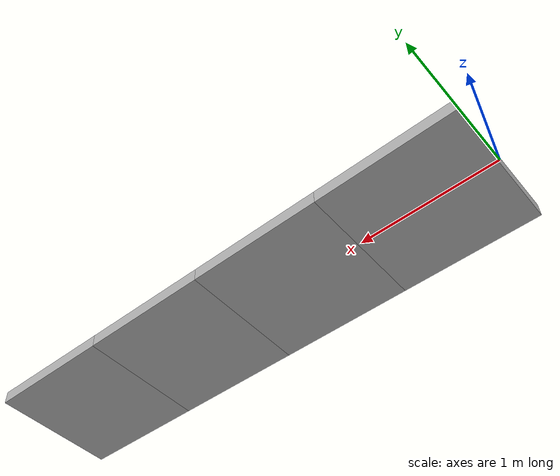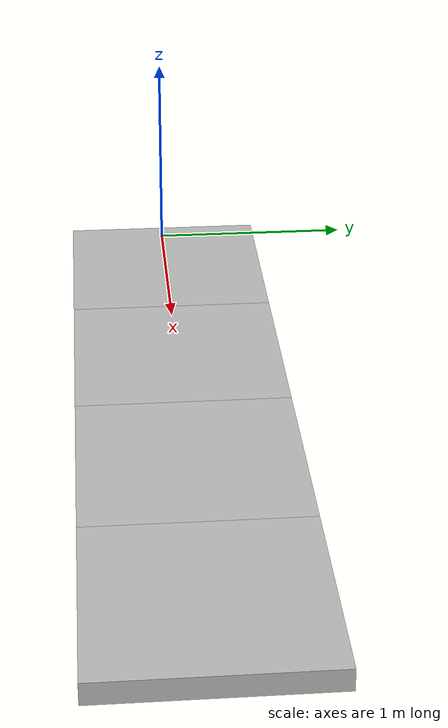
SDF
<sdf version='1.6'>
  <model name='closed_chain'>
    <link name='right_pad1'>
      <pose frame=''>0 0 0 0 -0 0</pose>
      <inertial>
        <pose frame=''>8.3e-05 9e-06 0.038196 0 -0 0</pose>
        <mass>1.41503</mass>
        <inertia>
          <ixx>0.00248548</ixx>
          <ixy>-7.4e-07</ixy>
          <ixz>3.761e-06</ixz>
          <iyy>0.00121388</iyy>
          <iyz>-4.2e-07</iyz>
          <izz>0.00287756</izz>
        </inertia>
      </inertial>
      <collision name='right_pad1_collision_collision'>
        <pose frame=''>0.5 0 0 0 -0 0</pose>
        <geometry>
          <box>
            <size>1 1 0.1</size>
          </box>
        </geometry>
      </collision>
      <visual name='right_pad1_visual_visual'>
        <pose frame=''>0.5 0 0 0 -0 0</pose>
        <geometry>
          <box>
            <size>1 1 0.1</size>
          </box>
        </geometry>
      </visual>
    </link>
    <link name='right_pad2'>
      <pose frame=''>1 0 0 0 -0 0</pose>
      <inertial>
        <pose frame=''>8.3e-05 9e-06 0.038196 0 -0 0</pose>
        <mass>1.41503</mass>
        <inertia>
          <ixx>0.00248548</ixx>
          <ixy>-7.4e-07</ixy>
          <ixz>3.761e-06</ixz>
          <iyy>0.00121388</iyy>
          <iyz>-4.2e-07</iyz>
          <izz>0.00287756</izz>
        </inertia>
      </inertial>
      <collision name='right_pad2_collision_collision'>
        <pose frame=''>0.5 0 0 0 -0 0</pose>
        <geometry>
          <box>
            <size>1 1 0.1</size>
          </box>
        </geometry>
      </collision>
      <visual name='right_pad2_visual_visual'>
        <pose frame=''>0.5 0 0 0 -0 0</pose>
        <geometry>
          <box>
            <size>1 1 0.1</size>
          </box>
        </geometry>
      </visual>
    </link>
    <joint name='right_pad_joint1' type='revolute'>
      <child>right_pad2</child>
      <parent>right_pad1</parent>
      <axis>
        <xyz>0 1 0</xyz>
        <limit>
          <lower>-3.14</lower>
          <upper>3.14</upper>
          <effort>100</effort>
          <velocity>10</velocity>
        </limit>
        <dynamics>
          <spring_reference>0</spring_reference>
          <spring_stiffness>0</spring_stiffness>
        </dynamics>
        <use_parent_model_frame>1</use_parent_model_frame>
      </axis>
    </joint>
    <link name='right_pad3'>
      <pose frame=''>2 0 0 0 -0 0</pose>
      <inertial>
        <pose frame=''>8.3e-05 9e-06 0.038196 0 -0 0</pose>
        <mass>1.41503</mass>
        <inertia>
          <ixx>0.00248548</ixx>
          <ixy>-7.4e-07</ixy>
          <ixz>3.761e-06</ixz>
          <iyy>0.00121388</iyy>
          <iyz>-4.2e-07</iyz>
          <izz>0.00287756</izz>
        </inertia>
      </inertial>
      <collision name='right_pad3_collision_collision'>
        <pose frame=''>0.5 0 0 0 -0 0</pose>
        <geometry>
          <box>
            <size>1 1 0.1</size>
          </box>
        </geometry>
      </collision>
      <visual name='right_pad3_visual_visual'>
        <pose frame=''>0.5 0 0 0 -0 0</pose>
        <geometry>
          <box>
            <size>1 1 0.1</size>
          </box>
        </geometry>
      </visual>
    </link>
    <joint name='right_pad_joint2' type='revolute'>
      <child>right_pad3</child>
      <parent>right_pad2</parent>
      <axis>
        <xyz>0 1 0</xyz>
        <limit>
          <lower>-3.14</lower>
          <upper>3.14</upper>
          <effort>100</effort>
          <velocity>10</velocity>
        </limit>
        <dynamics>
          <spring_reference>0</spring_reference>
          <spring_stiffness>0</spring_stiffness>
        </dynamics>
        <use_parent_model_frame>1</use_parent_model_frame>
      </axis>
    </joint>
    <link name='right_pad4'>
      <pose frame=''>3 0 0 0 -0 0</pose>
      <inertial>
        <pose frame=''>8.3e-05 9e-06 0.038196 0 -0 0</pose>
        <mass>1.41503</mass>
        <inertia>
          <ixx>0.00248548</ixx>
          <ixy>-7.4e-07</ixy>
          <ixz>3.761e-06</ixz>
          <iyy>0.00121388</iyy>
          <iyz>-4.2e-07</iyz>
          <izz>0.00287756</izz>
        </inertia>
      </inertial>
      <collision name='right_pad4_collision_collision'>
        <pose frame=''>0.5 0 0 0 -0 0</pose>
        <geometry>
          <box>
            <size>1 1 0.1</size>
          </box>
        </geometry>
      </collision>
      <visual name='right_pad4_visual_visual'>
        <pose frame=''>0.5 0 0 0 -0 0</pose>
        <geometry>
          <box>
            <size>1 1 0.1</size>
          </box>
        </geometry>
      </visual>
    </link>
    <joint name='right_pad_joint3' type='revolute'>
      <child>right_pad4</child>
      <parent>right_pad3</parent>
      <axis>
        <xyz>0 1 0</xyz>
        <limit>
          <lower>-3.14</lower>
          <upper>3.14</upper>
          <effort>100</effort>
          <velocity>10</velocity>
        </limit>
        <dynamics>
          <spring_reference>0</spring_reference>
          <spring_stiffness>0</spring_stiffness>
        </dynamics>
        <use_parent_model_frame>1</use_parent_model_frame>
      </axis>
    </joint>
    <static>0</static>
    <plugin name='gazebo_ros_control' filename='libgazebo_ros_control.so'>
      <robotNamespace>/closed_chain</robotNamespace>
    </plugin>
  </model>
</sdf>
